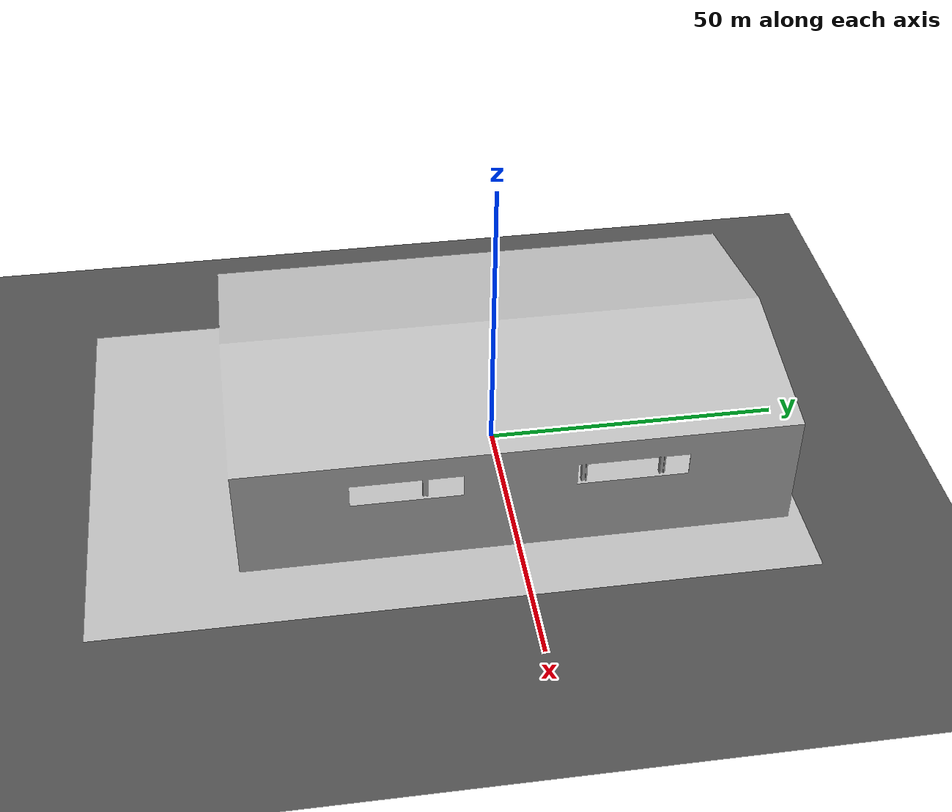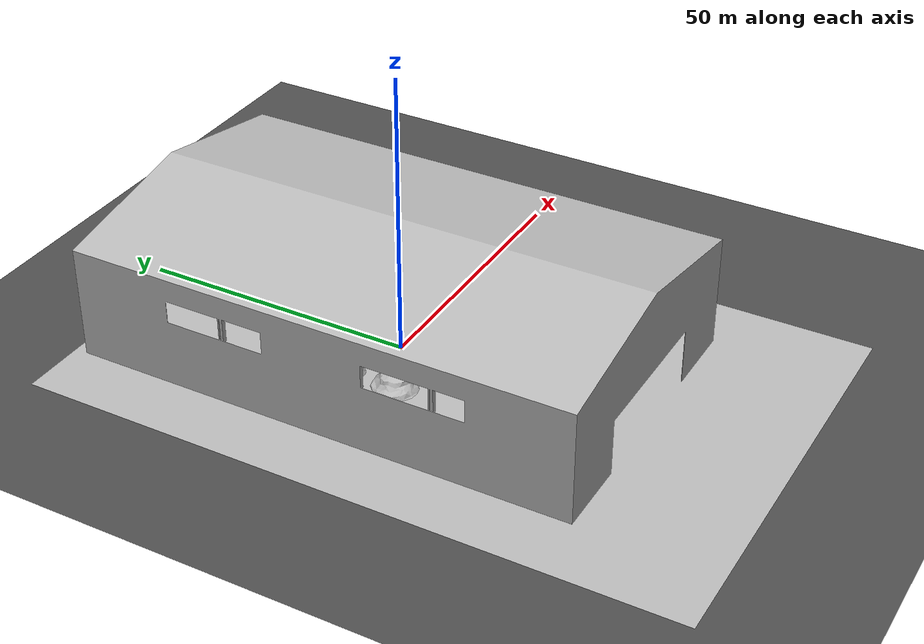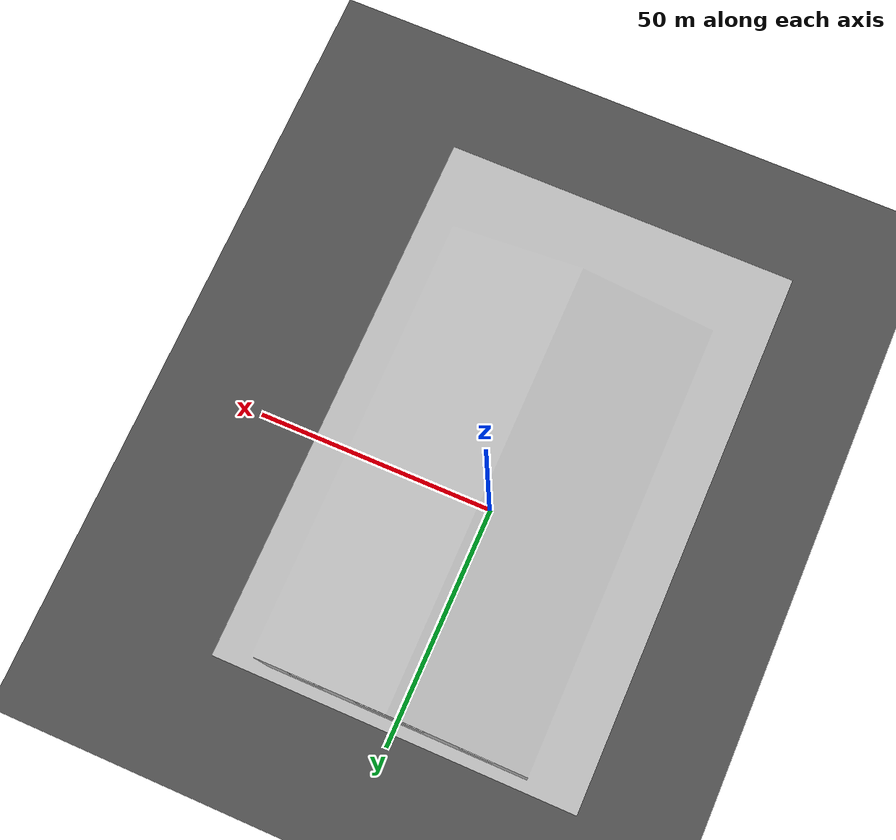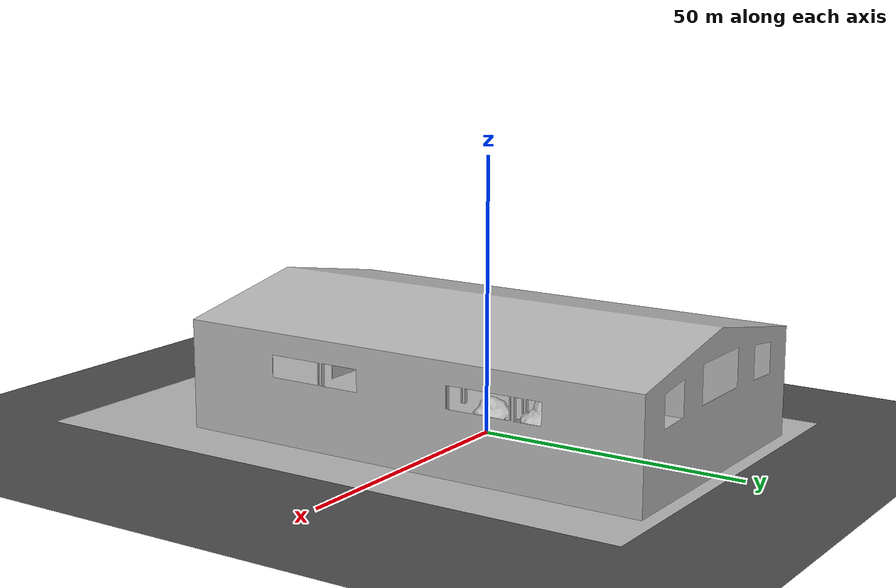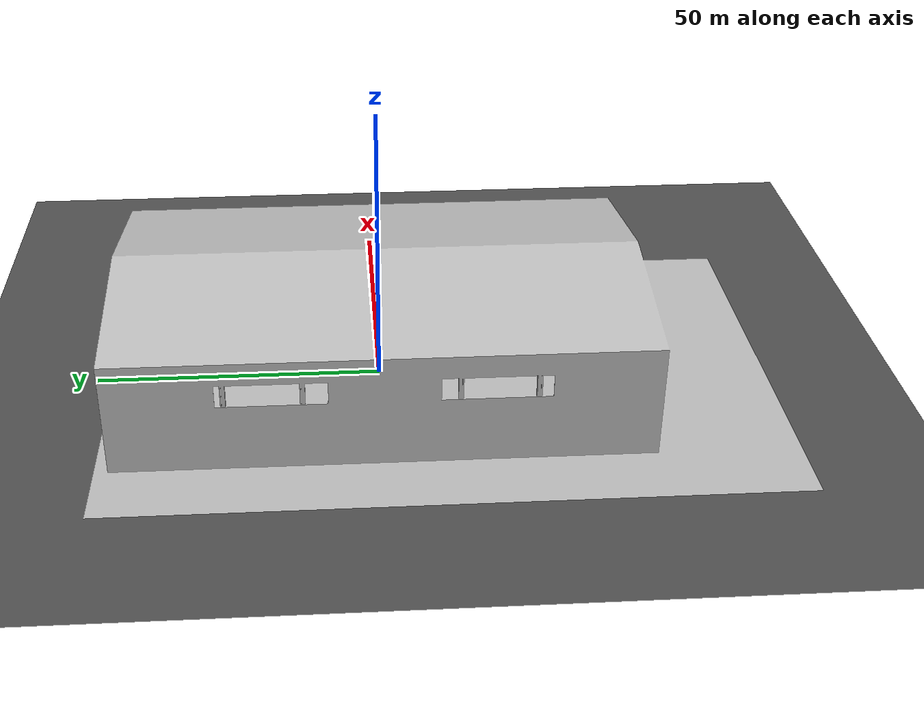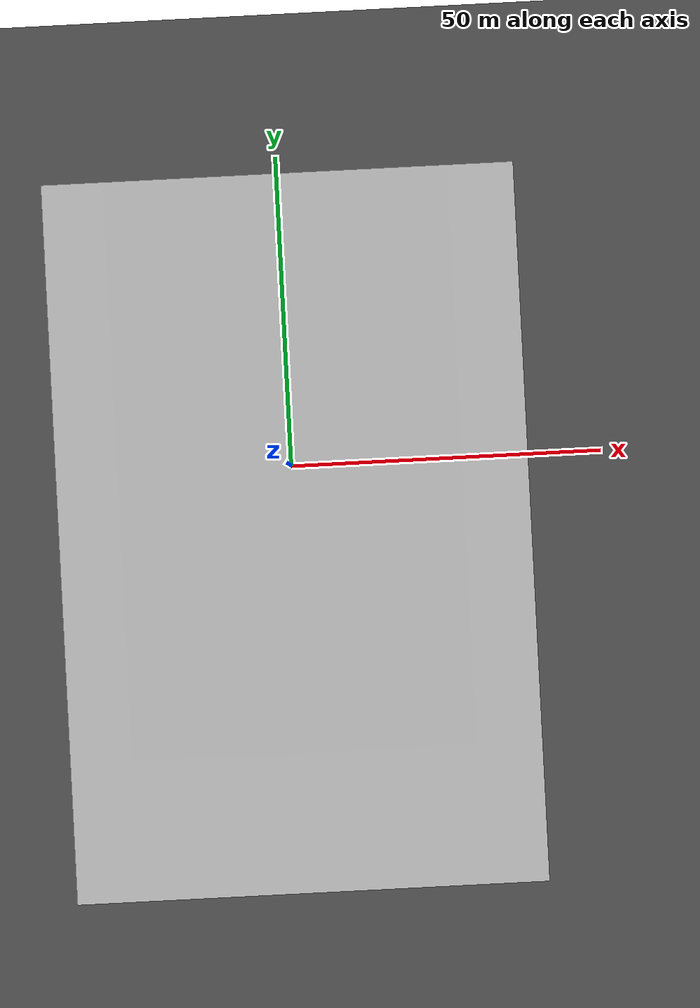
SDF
<sdf version="1.6">
 <world name="default">
  <light name="sun" type="directional">
   <pose>0 0 10 0 -0 0</pose>
   <diffuse>0.8 0.8 0.8 1</diffuse>
   <specular>0.1 0.1 0.1 1</specular>
   <attenuation>
    <range>1000</range>
    <constant>0.9</constant>
    <linear>0.01</linear>
    <quadratic>0.001</quadratic>
   </attenuation>
   <direction>-0.5 0.5 -1</direction>
  </light>
  <gravity>0 0 -9.8</gravity>
  <magnetic_field>6e-06 2.3e-05 -4.2e-05</magnetic_field>
  <atmosphere type="adiabatic"/>
  <physics name="default_physics" default="0" type="ode">
   <max_step_size>0.001</max_step_size>
   <real_time_factor>1</real_time_factor>
   <real_time_update_rate>1000</real_time_update_rate>
  </physics>
  <scene><ambient>0.4 0.4 0.4 1</ambient><background>0.7 0.7 0.7 1</background><shadows>1</shadows></scene>
  <spherical_coordinates>
   <surface_model>EARTH_WGS84</surface_model>
   <latitude_deg>0</latitude_deg>
   <longitude_deg>0</longitude_deg>
   <elevation>0</elevation>
   <heading_deg>0</heading_deg>
  </spherical_coordinates>
  <model name="ground_plane">
   <static>1</static>
   <link name="link">
    <collision name="collision">
     <geometry><plane><normal>0 0 1</normal><size>200 100</size></plane></geometry>
     <surface><friction><ode><mu>100</mu><mu2>50</mu2></ode></friction></surface>
    </collision>
    <visual name="visual">
     <cast_shadows>0</cast_shadows>
     <geometry><plane><normal>0 0 1</normal><size>200 100</size></plane></geometry>
     <material>
      <script>
       <uri>model://asphalt_plane/materials/scripts</uri>
       <uri>model://asphalt_plane/materials/textures</uri>
       <name>vrc/asphalt</name>
      </script>
     </material>
    </visual>
   </link>
  </model>
  <model name="mountains">
   <static>1</static>
   <link name="link">
    <collision name="collision">
     <geometry><mesh><scale>1 1 1</scale><uri>model://mountains/meshes/mountains.obj</uri></mesh></geometry>
    </collision>
    <visual name="visual1">
     <geometry><mesh><scale>1 1 1</scale><uri>model://mountains/meshes/mountains.obj</uri></mesh></geometry>
     <material>
      <script><uri>model://mountains/materials/textures</uri><name>Mountains/Diffuse</name></script>
      <shader type="normal_map_object_space"><normal_map>mountainsNormal.png</normal_map></shader>
     </material>
    </visual>
   </link>
   <pose>0 -3 0 1.5707963268 0 0</pose>
  </model>
  <model name="Warehouse">
   <static>1</static>
   <link name="link">
    <collision name="collision">
     <geometry><mesh><scale>1.8 2 1.8</scale><uri>model://warehouse/meshes/warehouse.obj</uri></mesh></geometry>
    </collision>
    <visual name="visual">
     <geometry><mesh><scale>1.8 2 1.8</scale><uri>model://warehouse/meshes/warehouse.obj</uri></mesh></geometry>
     <material>
      <script><uri>model://warehouse/materials/textures</uri><name>Warehouse/Diffuse</name></script>
      <shader type="normal_map_object_space"><normal_map>walls_nrm.png</normal_map></shader>
     </material>
    </visual>
   </link>
   <pose>0 0 0 1.5707963268 0 0</pose>
  </model>
  <model name="person_walking">
   <link name="link">
    <inertial>
     <pose>0 0 0.95 0 -0 0</pose>
     <mass>80</mass>
     <inertia><ixx>27.82</ixx><ixy>0</ixy><ixz>0</ixz><iyy>24.88</iyy><iyz>0</iyz><izz>4.57</izz></inertia>
    </inertial>
    <collision name="bottom">
     <pose>0 0 0.01 0 -0 0</pose>
     <geometry><box><size>0.35 0.75 0.02</size></box></geometry>
    </collision>
    <collision name="person">
     <pose>0 0 -0.02 0 -0 0</pose>
     <geometry><mesh><uri>model://person_walking/meshes/walking.dae</uri></mesh></geometry>
    </collision>
    <visual name="visual">
     <pose>0 0 -0.02 0 -0 0</pose>
     <geometry><mesh><uri>model://person_walking/meshes/walking.dae</uri></mesh></geometry>
    </visual>
   </link>
   <pose>-18.759172 -3.648820 0.0 0.0 0.0 2.177812</pose>
  </model>
  <model name="person_standing">
   <link name="link">
    <inertial>
     <pose>0 -0.1 0.95 0 -0 0</pose>
     <mass>80</mass>
     <inertia><ixx>24.88</ixx><ixy>0</ixy><ixz>0</ixz><iyy>25.73</iyy><iyz>0</iyz><izz>2.48</izz></inertia>
    </inertial>
    <collision name="bottom">
     <pose>0 -0.1 0.01 0 -0 0</pose>
     <geometry><box><size>0.5 0.35 0.02</size></box></geometry>
    </collision>
    <collision name="person">
     <pose>0 0 0.02 0.04 -0 0</pose>
     <geometry><mesh><uri>model://person_standing/meshes/standing.dae</uri></mesh></geometry>
    </collision>
    <visual name="visual">
     <pose>0 0 0.02 0.04 -0 0</pose>
     <geometry><mesh><uri>model://person_standing/meshes/standing.dae</uri></mesh></geometry>
    </visual>
   </link>
   <pose>-17.713847 3.018360 0.0 0.0 0.0 1.49</pose>
  </model>
 </world>
</sdf>
